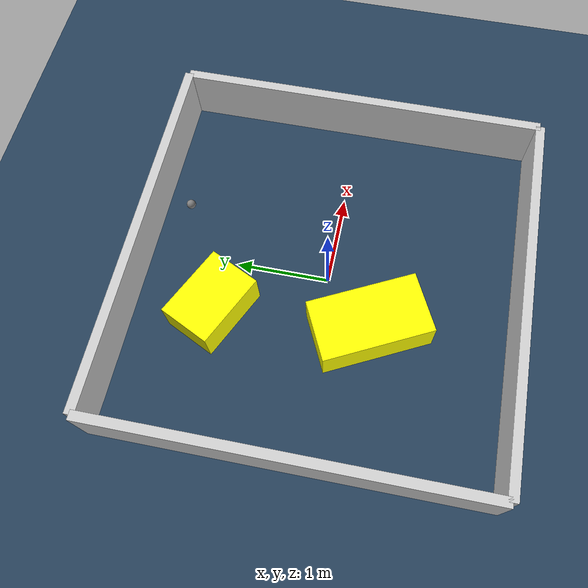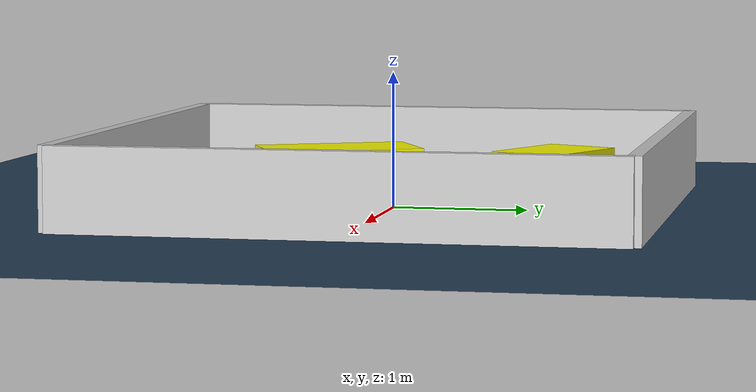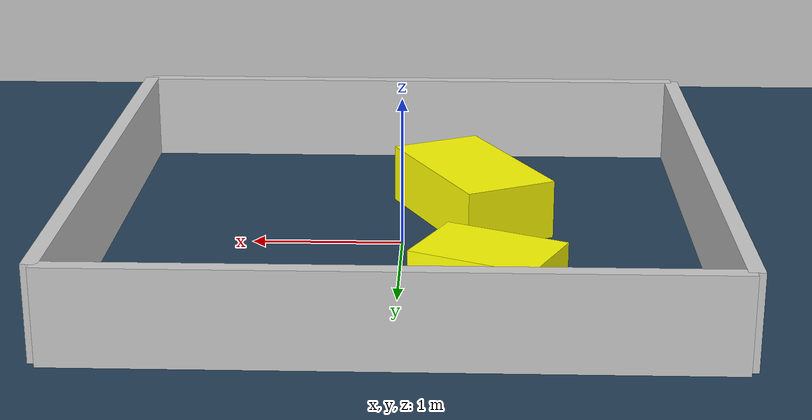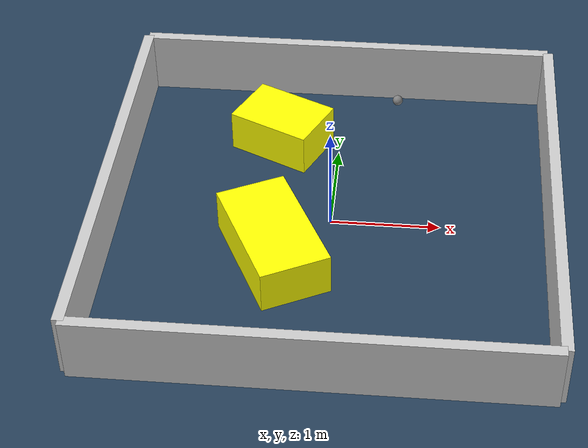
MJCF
<?xml version="1.0" ?>
<mujoco model="generated_environment">
  <option timestep="0.01" integrator="RK4" cone="elliptic"/>
  <default>
    <geom density="1"/>
  </default>
  <asset>
    <texture builtin="gradient" height="3072" rgb1="0.3 0.5 0.7" rgb2="0 0 0" type="skybox" width="512"/>
    <texture builtin="checker" height="300" mark="edge" markrgb="0.8 0.8 0.8" name="groundplane" rgb1="0.2 0.3 0.4" rgb2="0.1 0.2 0.3" type="2d" width="300"/>
    <material name="groundplane" reflectance="0.2" texrepeat="5 5" texture="groundplane" texuniform="true"/>
    <material name="robot" rgba="0.0 1.0 0.0 1"/>
  </asset>
  <worldbody>
    <light dir="0 0 -1" directional="true" pos="0 0 1.5"/>
    <geom condim="4" friction="1.0 0.005 0.001" material="groundplane" name="floor" size="0 0 0.05" type="plane"/>
    <body name="walls">
      <geom name="wall_1" condim="4" pos="-2.0 0.0 0.3" rgba="0.800000011920929 0.800000011920929 0.800000011920929 1.0" size="0.05 2.0 0.3" type="box"/>
      <geom name="wall_2" condim="4" pos="2.0 0.0 0.3" rgba="0.800000011920929 0.800000011920929 0.800000011920929 1.0" size="0.05 2.0 0.3" type="box"/>
      <geom name="wall_3" condim="4" pos="0.0 -2.0 0.3" rgba="0.800000011920929 0.800000011920929 0.800000011920929 1.0" size="2.0 0.05 0.3" type="box"/>
      <geom name="wall_4" condim="4" pos="0.0 2.0 0.3" rgba="0.800000011920929 0.800000011920929 0.800000011920929 1.0" size="2.0 0.05 0.3" type="box"/>
    </body>
    <body name="robot">
      <joint name="joint_x" type="slide" pos="0 0 0" axis="1 0 0"/>
      <joint name="joint_y" type="slide" pos="0 0 0" axis="0 1 0"/>
      <geom name="robot" type="sphere" pos="0.5390872920063083 1.6434016190960823 0.2" size="0.05" mass="5." friction="1.0 0.005 0.0001" condim="4"/>
      <site name="sensor_ball"/>
    </body>
    <body name="obstacle_1_movable">
      <geom name="obstacle_1_movable" condim="4" pos="-0.4695667877108294 -0.5195014039528807 0.2" euler="0 0 206.57062652832838" friction="1.0 0.005 0.001" rgba="1 1 0 1" size="0.32132848533294933 0.5818515413016925 0.2" type="box" mass="0.1"/>
      <joint type="free"/>
    </body>
    <body name="obstacle_2_movable">
      <geom name="obstacle_2_movable" condim="4" pos="-0.5541559234280728 1.1096564356689076 0.2" euler="0 0 244.71098753142778" friction="1.0 0.005 0.001" rgba="1 1 0 1" size="0.28477808036512264 0.40390313989009535 0.2" type="box" mass="0.1"/>
      <joint type="free"/>
    </body>
  </worldbody>
  <actuator>
    <motor name="actuator_x" joint="joint_x" gear="1" ctrlrange="-1 1"/>
    <motor name="actuator_y" joint="joint_y" gear="1" ctrlrange="-1 1"/>
  </actuator>
</mujoco>
